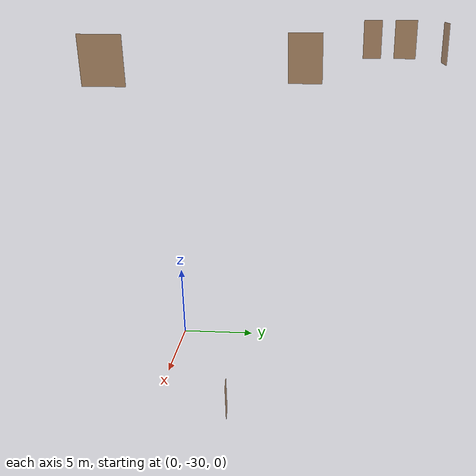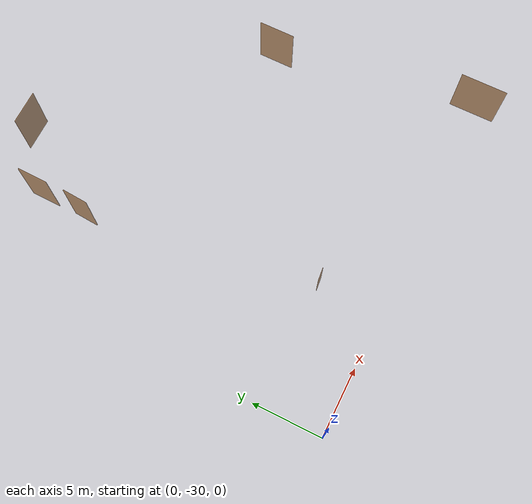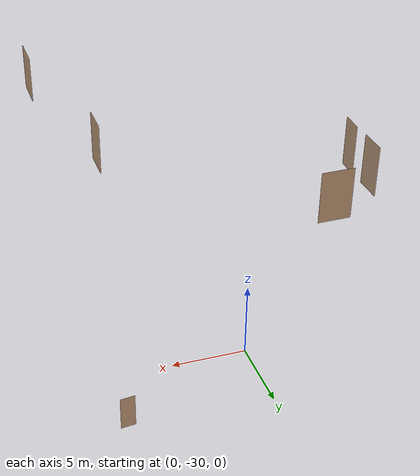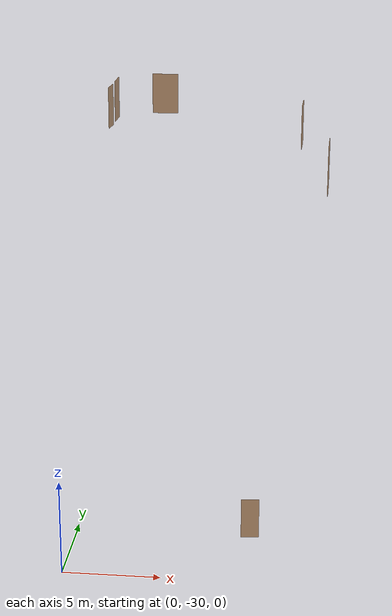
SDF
<sdf version="1.7">
 <world name="world">
  <include><uri>model://sun</uri></include>
  <model name="board_rm_door">
   <pose>0.864059588887987 -17.213831030023382 20.0 0 0 -1.6373130544308765</pose>
   <link name="right">
    <pose>0 0 1.11 0 0 0</pose>
    <visual name="right_visual">
     <geometry><box><size>1.070753919567047 0.03 2.2</size></box></geometry>
     <material><ambient>0.5 0.25 0 0.6</ambient><diffuse>0.5 0.25 0 0.6</diffuse></material>
    </visual>
    <collision name="right_collision">
     <geometry><box><size>1.070753919567047 0.03 2.2</size></box></geometry>
     <surface><contact><collide_bitmask>0x02</collide_bitmask></contact></surface>
    </collision>
    <inertial>
     <mass>50.0</mass>
     <inertia><ixx>20.17041666666667</ixx><iyy>24.94380815111748</iyy><izz>4.78089148445081</izz></inertia>
    </inertial>
   </link>
   <joint name="right_joint" type="revolute">
    <parent>world</parent>
    <child>right</child>
    <axis><xyz>0 0 -1</xyz><limit><lower>0</lower><upper>1.57</upper></limit></axis>
    <pose>0.5403769597835235 0 0 0 0 0</pose>
   </joint>
   <plugin name="door" filename="libdoor.so">
    <v_max_door>0.5</v_max_door>
    <a_max_door>0.3</a_max_door>
    <a_nom_door>0.15</a_nom_door>
    <dx_min_door>0.01</dx_min_door>
    <f_max_door>500.0</f_max_door>
    <door name="board_rm_door" type="SwingDoor" left_joint_name="empty_joint" right_joint_name="right_joint"/>
   </plugin>
  </model>
  <model name="meeting_rm_door">
   <pose>0.8888171446597881 -15.269405331214458 20.0 0 0 1.5535450574440104</pose>
   <link name="right">
    <pose>0 0 1.11 0 0 0</pose>
    <visual name="right_visual">
     <geometry><box><size>1.2838879863551 0.03 2.2</size></box></geometry>
     <material><ambient>0.5 0.25 0 0.6</ambient><diffuse>0.5 0.25 0 0.6</diffuse></material>
    </visual>
    <collision name="right_collision">
     <geometry><box><size>1.2838879863551 0.03 2.2</size></box></geometry>
     <surface><contact><collide_bitmask>0x02</collide_bitmask></contact></surface>
    </collision>
    <inertial>
     <mass>50.0</mass>
     <inertia><ixx>20.17041666666667</ixx><iyy>27.034868172945647</iyy><izz>6.8719515062789736</izz></inertia>
    </inertial>
   </link>
   <joint name="right_joint" type="revolute">
    <parent>world</parent>
    <child>right</child>
    <axis><xyz>0 0 -1</xyz><limit><lower>0</lower><upper>1.57</upper></limit></axis>
    <pose>0.64694399317755 0 0 0 0 0</pose>
   </joint>
   <plugin name="door" filename="libdoor.so">
    <v_max_door>0.5</v_max_door>
    <a_max_door>0.3</a_max_door>
    <a_nom_door>0.15</a_nom_door>
    <dx_min_door>0.01</dx_min_door>
    <f_max_door>500.0</f_max_door>
    <door name="meeting_rm_door" type="SwingDoor" left_joint_name="empty_joint" right_joint_name="right_joint"/>
   </plugin>
  </model>
  <model name="office_door_2">
   <pose>3.331249260695577 -13.351164839072753 20.0 0 0 0.03123602589362966</pose>
   <link name="right">
    <pose>0 0 1.11 0 0 0</pose>
    <visual name="right_visual">
     <geometry><box><size>1.4182431372928412 0.03 2.2</size></box></geometry>
     <material><ambient>0.5 0.25 0 0.6</ambient><diffuse>0.5 0.25 0 0.6</diffuse></material>
    </visual>
    <collision name="right_collision">
     <geometry><box><size>1.4182431372928412 0.03 2.2</size></box></geometry>
     <surface><contact><collide_bitmask>0x02</collide_bitmask></contact></surface>
    </collision>
    <inertial>
     <mass>50.0</mass>
     <inertia><ixx>20.17041666666667</ixx><iyy>28.547556651992675</iyy><izz>8.384639985326006</izz></inertia>
    </inertial>
   </link>
   <joint name="right_joint" type="prismatic">
    <parent>world</parent>
    <child>right</child>
    <axis>
     <xyz>1 0 0</xyz>
     <limit><lower>0.0</lower><upper>1.4282431372928412</upper><effort>500.0</effort></limit>
    </axis>
   </joint>
   <plugin name="door" filename="libdoor.so">
    <v_max_door>0.2</v_max_door>
    <a_max_door>0.2</a_max_door>
    <a_nom_door>0.08</a_nom_door>
    <dx_min_door>0.001</dx_min_door>
    <f_max_door>100.0</f_max_door>
    <door name="office_door_2" type="SlidingDoor" left_joint_name="empty_joint" right_joint_name="right_joint"/>
   </plugin>
  </model>
  <model name="cafe_door_1">
   <pose>12.654593074745055 -29.5300186114235 20.0 0 0 -1.5807043503451466</pose>
   <link name="right">
    <pose>0 0 1.11 0 0 0</pose>
    <visual name="right_visual">
     <geometry><box><size>1.9580959511073435 0.03 2.2</size></box></geometry>
     <material><ambient>0.5 0.25 0 0.6</ambient><diffuse>0.5 0.25 0 0.6</diffuse></material>
    </visual>
    <collision name="right_collision">
     <geometry><box><size>1.9580959511073435 0.03 2.2</size></box></geometry>
     <surface><contact><collide_bitmask>0x02</collide_bitmask></contact></surface>
    </collision>
    <inertial>
     <mass>50.0</mass>
     <inertia><ixx>20.17041666666667</ixx><iyy>36.14224897392906</iyy><izz>15.979332307262386</izz></inertia>
    </inertial>
   </link>
   <joint name="right_joint" type="prismatic">
    <parent>world</parent>
    <child>right</child>
    <axis>
     <xyz>1 0 0</xyz>
     <limit><lower>0.0</lower><upper>1.9680959511073435</upper><effort>500.0</effort></limit>
    </axis>
   </joint>
   <plugin name="door" filename="libdoor.so">
    <v_max_door>0.2</v_max_door>
    <a_max_door>0.2</a_max_door>
    <a_nom_door>0.08</a_nom_door>
    <dx_min_door>0.001</dx_min_door>
    <f_max_door>100.0</f_max_door>
    <door name="cafe_door_1" type="SlidingDoor" left_joint_name="empty_joint" right_joint_name="right_joint"/>
   </plugin>
  </model>
  <model name="stairs_door">
   <pose>11.22701182083183 -20.80588773478477 20.0 0 0 1.558882494320271</pose>
   <link name="right">
    <pose>0 0 1.11 0 0 0</pose>
    <visual name="right_visual">
     <geometry><box><size>1.5390763369633196 0.03 2.2</size></box></geometry>
     <material><ambient>0.5 0.25 0 0.6</ambient><diffuse>0.5 0.25 0 0.6</diffuse></material>
    </visual>
    <collision name="right_collision">
     <geometry><box><size>1.5390763369633196 0.03 2.2</size></box></geometry>
     <surface><contact><collide_bitmask>0x02</collide_bitmask></contact></surface>
    </collision>
    <inertial>
     <mass>50.0</mass>
     <inertia><ixx>20.17041666666667</ixx><iyy>30.036483212501796</iyy><izz>9.873566545835125</izz></inertia>
    </inertial>
   </link>
   <joint name="right_joint" type="prismatic">
    <parent>world</parent>
    <child>right</child>
    <axis>
     <xyz>1 0 0</xyz>
     <limit><lower>0.0</lower><upper>1.5490763369633196</upper><effort>500.0</effort></limit>
    </axis>
   </joint>
   <plugin name="door" filename="libdoor.so">
    <v_max_door>0.2</v_max_door>
    <a_max_door>0.2</a_max_door>
    <a_nom_door>0.08</a_nom_door>
    <dx_min_door>0.001</dx_min_door>
    <f_max_door>100.0</f_max_door>
    <door name="stairs_door" type="SlidingDoor" left_joint_name="empty_joint" right_joint_name="right_joint"/>
   </plugin>
  </model>
  <model name="lab_door_lvl9">
   <pose>9.163216433602024 -25.402481355780303 0.0 0 0 -3.029774255734204</pose>
   <link name="right">
    <pose>0 0 1.11 0 0 0</pose>
    <visual name="right_visual">
     <geometry><box><size>0.9366361429906468 0.03 2.2</size></box></geometry>
     <material><ambient>0.5 0.25 0 0.6</ambient><diffuse>0.5 0.25 0 0.6</diffuse></material>
    </visual>
    <collision name="right_collision">
     <geometry><box><size>0.9366361429906468 0.03 2.2</size></box></geometry>
     <surface><contact><collide_bitmask>0x02</collide_bitmask></contact></surface>
    </collision>
    <inertial>
     <mass>50.0</mass>
     <inertia><ixx>20.17041666666667</ixx><iyy>23.822030268151654</iyy><izz>3.659113601484981</izz></inertia>
    </inertial>
   </link>
   <joint name="right_joint" type="revolute">
    <parent>world</parent>
    <child>right</child>
    <axis><xyz>0 0 -1</xyz><limit><lower>0</lower><upper>1.57</upper></limit></axis>
    <pose>0.4733180714953234 0 0 0 0 0</pose>
   </joint>
   <plugin name="door" filename="libdoor.so">
    <v_max_door>0.5</v_max_door>
    <a_max_door>0.3</a_max_door>
    <a_nom_door>0.15</a_nom_door>
    <dx_min_door>0.01</dx_min_door>
    <f_max_door>500.0</f_max_door>
    <door name="lab_door_lvl9" type="SwingDoor" left_joint_name="empty_joint" right_joint_name="right_joint"/>
   </plugin>
  </model>
 </world>
</sdf>
